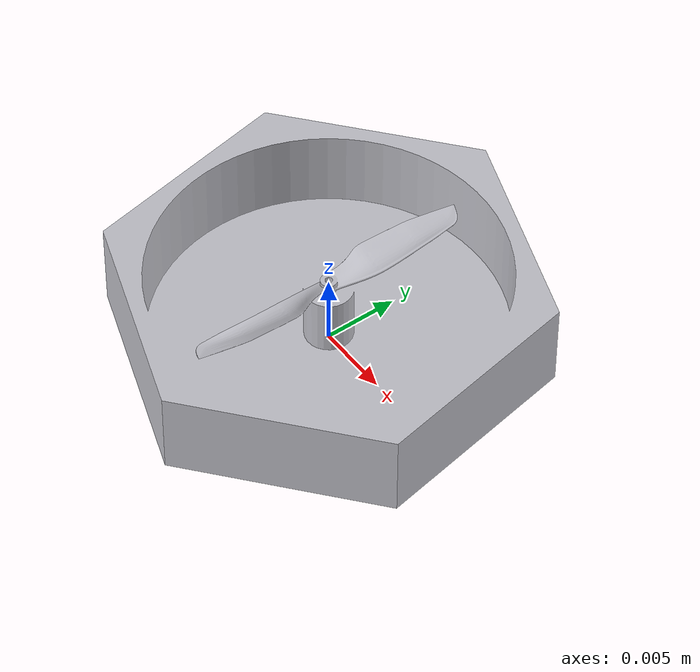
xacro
<?xml version="1.0" ?>
<robot name="drone" xmlns:xacro="http://www.ros.org/wiki/xacro">

<xacro:include filename="$(find drone_description)/urdf/materials.xacro" />
<xacro:include filename="$(find drone_description)/urdf/drone.trans" />
<xacro:include filename="$(find drone_description)/urdf/drone.gazebo" />
<link name="base_link">
  <inertial>
    <origin xyz="6.895992337736006e-15 -1.8291756864021236e-17 0.02409456447376257" rpy="0 0 0"/>
    <mass value="7.806285051777077"/>
    <inertia ixx="0.054139" iyy="0.054139" izz="0.102715" ixy="0.0" iyz="-0.0" ixz="0.0"/>
  </inertial>
  <visual>
    <origin xyz="0 0 0" rpy="0 0 0"/>
    <geometry>
      <mesh filename="package://drone_description/meshes/base_link.stl" scale="0.001 0.001 0.001"/>
    </geometry>
    <material name="silver"/>
  </visual>
  <collision>
    <origin xyz="0 0 0" rpy="0 0 0"/>
    <geometry>
      <mesh filename="package://drone_description/meshes/base_link.stl" scale="0.001 0.001 0.001"/>
    </geometry>
  </collision>
</link>

<link name="Link_0_v2_1">
  <inertial>
    <origin xyz="1.0634307645973735e-09 6.484291401404392e-09 0.0020906954113535936" rpy="0 0 0"/>
    <mass value="0.04286870008292693"/>
    <inertia ixx="9.8e-05" iyy="1e-06" izz="9.9e-05" ixy="-0.0" iyz="-0.0" ixz="-0.0"/>
  </inertial>
  <visual>
    <origin xyz="-0.0 -0.0 -0.045" rpy="0 0 0"/>
    <geometry>
      <mesh filename="package://drone_description/meshes/Link_0_v2_1.stl" scale="0.001 0.001 0.001"/>
    </geometry>
    <material name="silver"/>
  </visual>
  <collision>
    <origin xyz="-0.0 -0.0 -0.045" rpy="0 0 0"/>
    <geometry>
      <mesh filename="package://drone_description/meshes/Link_0_v2_1.stl" scale="0.001 0.001 0.001"/>
    </geometry>
  </collision>
</link>

<joint name="Revolute 1" type="continuous">
  <origin xyz="0.0 0.0 0.045" rpy="0 0 0"/>
  <parent link="base_link"/>
  <child link="Link_0_v2_1"/>
  <axis xyz="0.0 0.0 1.0"/>
</joint>

</robot>

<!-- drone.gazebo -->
<robot name="drone" xmlns:xacro="http://www.ros.org/wiki/xacro" >

<xacro:property name="body_color" value="Gazebo/Silver" />

<gazebo>
  <plugin name="control" filename="libgazebo_ros_control.so"/>
</gazebo>
<gazebo reference="base_link">
  <material>${body_color}</material>
  <mu1>0.2</mu1>
  <mu2>0.2</mu2>
  <selfCollide>true</selfCollide>
  <gravity>true</gravity>
</gazebo>

<gazebo reference="Link_0_v2_1">
  <material>${body_color}</material>
  <mu1>0.2</mu1>
  <mu2>0.2</mu2>
  <selfCollide>true</selfCollide>
</gazebo>

</robot>
